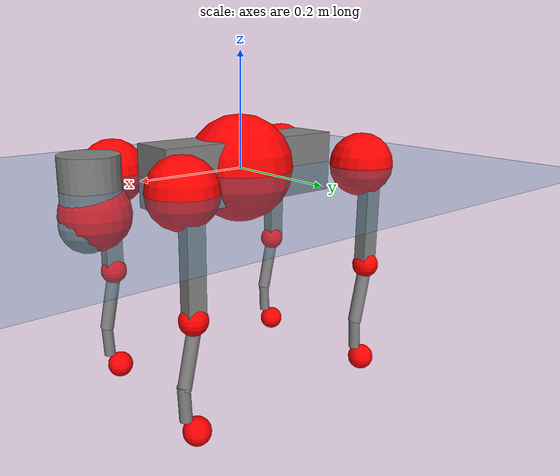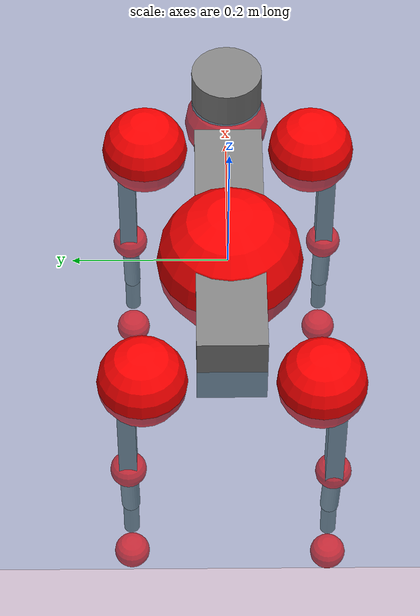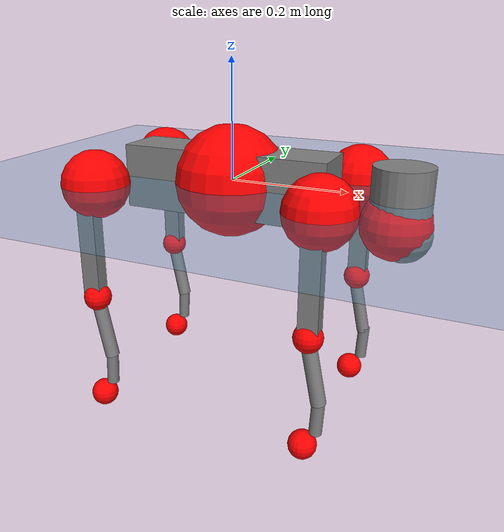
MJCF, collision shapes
<mujoco model="go2">
  <compiler angle="radian" assetdir="assets" balanceinertia="true" inertiafromgeom="false"/>

  <option timestep="0.005" density="1.2" viscosity="2e-05"/>

  <size nkey="1"/>

  <visual>
    <quality shadowsize="8192"/>
    <map shadowclip="0.5"/>
  </visual>

  <default>
    <default class="/">
      <geom contype="0" conaffinity="0" group="1" solref="-1000 -80"/>
      <site size="0.01 0.005 0.005" group="5"/>
      <general forcelimited="true" biastype="affine" gainprm="20" biasprm="0 -20 -0.5"/>
      <default class="go2">
        <joint armature="0.01" damping="0.01" frictionloss="0.2"/>
        <geom condim="1" margin="0.001"/>
        <default class="visual">
          <geom type="mesh" group="2"/>
        </default>
        <default class="collision">
          <geom group="3"/>
          <default class="foot">
            <geom size="0.022 0 0" condim="6" priority="1" friction="0.8 0.02 0.01" solimp="0.015 1 0.022"/>
          </default>
        </default>
        <default class="reward_collision_sphere">
          <geom group="5" rgba="1 0 0 1"/>
        </default>
      </default>
    </default>
  </default>

  <asset>
    <texture type="skybox" colorspace="auto" name="//unnamed_texture_0" builtin="gradient" rgb1="0.95 0.95 0.95" rgb2="0.95 0.95 0.95" width="100" height="600"/>
    <texture type="2d" colorspace="auto" name="texplane" builtin="checker" rgb1="0.345 0.575 0.748" rgb2="0.345 0.575 0.748" markrgb="1 1 1" width="512" height="512"/>
    <material name="MatPlane" class="/" texture="texplane" texuniform="true" texrepeat="2 2" specular="0.9"/>
    <material name="metal" class="/" rgba="0.9 0.95 0.95 1"/>
    <material name="black" class="/" rgba="0 0 0 1"/>
    <material name="white" class="/"/>
    <material name="gray" class="/" rgba="0.671705 0.692426 0.77427 1"/>
    <mesh name="base_0" class="/" file="base_0.obj"/>
    <mesh name="base_1" class="/" file="base_1.obj"/>
    <mesh name="base_2" class="/" file="base_2.obj"/>
    <mesh name="base_3" class="/" file="base_3.obj"/>
    <mesh name="base_4" class="/" file="base_4.obj"/>
    <mesh name="hip_0" class="/" file="hip_0.obj"/>
    <mesh name="hip_1" class="/" file="hip_1.obj"/>
    <mesh name="thigh_0" class="/" file="thigh_0.obj"/>
    <mesh name="thigh_1" class="/" file="thigh_1.obj"/>
    <mesh name="thigh_mirror_0" class="/" file="thigh_mirror_0.obj"/>
    <mesh name="thigh_mirror_1" class="/" file="thigh_mirror_1.obj"/>
    <mesh name="calf_0" class="/" file="calf_0.obj"/>
    <mesh name="calf_1" class="/" file="calf_1.obj"/>
    <mesh name="calf_mirror_0" class="/" file="calf_mirror_0.obj"/>
    <mesh name="calf_mirror_1" class="/" file="calf_mirror_1.obj"/>
    <mesh name="foot" class="/" file="foot.obj"/>
  </asset>

  <worldbody>
    <geom name="floor" class="/" size="100 100 0.125" type="plane" group="0" material="MatPlane"/>
    <light name="toplight_shadow" class="/" pos="0 0 5" dir="0.0990148 0.0990148 -0.990148" type="directional" ambient="0.04 0.04 0.04" diffuse="0.55 0.55 0.55" specular="0.12 0.12 0.12"/>
    <light name="toplight_fill" class="/" pos="0 0 5" dir="0.0990148 0.0990148 -0.990148" type="directional" castshadow="false" ambient="0.04 0.04 0.04" diffuse="0.3 0.3 0.3" specular="0.08 0.08 0.08"/>
    <body name="trunk" childclass="go2" pos="-0.000524241 -0.00264114 -0.000260968" quat="0.999999 -0.00103104 0.000195284 0.000812885">
      <inertial pos="0.018806 -0.00211665 -0.00216687" quat="-0.0017435 0.705954 -0.000239235 0.708256" mass="5.92031" diaginertia="0.0997417 0.0708225 0.0148514"/>
      <joint name="//unnamed_joint_0" type="free" armature="0" damping="0" frictionloss="0"/>
      <geom name="//unnamed_geom_1" class="visual" material="black" mesh="base_0"/>
      <geom name="//unnamed_geom_2" class="visual" material="black" mesh="base_1"/>
      <geom name="//unnamed_geom_3" class="visual" material="black" mesh="base_2"/>
      <geom name="//unnamed_geom_4" class="visual" material="white" mesh="base_3"/>
      <geom name="//unnamed_geom_5" class="visual" material="gray" mesh="base_4"/>
      <geom name="trunk_1" class="collision" size="0.178288 0.0443113 0.0540266" type="box"/>
      <geom name="trunk_2" class="collision" size="0.0473917 0.0426526" pos="0.284165 0 0.00904185" type="cylinder"/>
      <geom name="trunk_3" class="collision" size="0.0445482" pos="0.292141 0 -0.0542511"/>
      <geom name="//unnamed_geom_9" class="reward_collision_sphere" size="0.0947835"/>
      <geom name="//unnamed_geom_10" class="reward_collision_sphere" size="0.0568701" pos="0.279179 0 -0.0406883"/>
      <site name="imu" pos="-0.0207002 -0.00208379 0.0362641" size="0.00947835"/>
      <camera name="track" pos="0 -1.8845 0" quat="0.707107 0.707107 0 0" mode="trackcom"/>
      <camera name="ego_camera" pos="0.311086 0 0.0406883" quat="-0.5 -0.5 0.5 0.5"/>
      <body name="FL_hip" pos="0.192306 0.0446378 -0.000255898" quat="1 -0.000201882 0.000107048 -0.000120411">
        <inertial pos="-0.00570826 -0.000756639 -0.00086529" quat="0.491382 0.501129 0.503844 0.503543" mass="0.574365" diaginertia="0.000869241 0.000429825 0.000288208"/>
        <joint name="FL_hip_joint" pos="0 0 0" axis="0.999915 0.0109362 -0.00702797" stiffness="0.0126013" range="-1.09009 1.06824" armature="0.009519" damping="0" frictionloss="0.185026"/>
        <geom name="//unnamed_geom_11" class="visual" material="metal" mesh="hip_0"/>
        <geom name="//unnamed_geom_12" class="visual" material="gray" mesh="hip_1"/>
        <geom name="//unnamed_geom_13" class="collision" size="0.0436004 0.0189567" pos="0 0.0753799 0" quat="0.707107 0.707107 0 0" type="cylinder"/>
        <geom name="//unnamed_geom_14" class="reward_collision_sphere" size="0.0568701" pos="0 0.0659574 0"/>
        <body name="FL_thigh" pos="0.0019526 0.0917972 -0.000371988" quat="0.999999 0.000678734 0.000514925 -0.000624446">
          <inertial pos="-0.00378245 -0.0190489 -0.028408" quat="0.831133 0.0807781 -0.023014 0.549693" mass="1.01215" diaginertia="0.00570231 0.00448662 0.000533187"/>
          <joint name="FL_thigh_joint" pos="0 0 0" axis="-0.0150818 0.99987 -0.00577935" stiffness="0.0117592" range="-1.62306 3.44024" armature="0.0104197" damping="0" frictionloss="0.168652"/>
          <geom name="//unnamed_geom_15" class="visual" material="metal" mesh="thigh_0"/>
          <geom name="//unnamed_geom_16" class="visual" material="gray" mesh="thigh_1"/>
          <geom name="//unnamed_geom_17" class="collision" size="0.100944 0.011611 0.0161132" pos="0 0 -0.0962957" quat="0.707107 0 0.707107 0" type="box"/>
          <body name="FL_calf" pos="-0.00027841 -0.00182084 -0.191888" quat="1 2.94932e-05 -9.9287e-05 0.000244928">
            <inertial pos="0.0036359 -0.00294349 -0.130152" quat="0.710609 -0.00100162 -0.00184469 0.703584" mass="0.200497" diaginertia="0.00141981 0.00108568 3.14765e-05"/>
            <joint name="FL_calf_joint" pos="0 0 0" axis="-0.00931967 0.999928 -0.00754423" stiffness="0.0139268" range="-2.685 -0.781544" armature="0.00836946" damping="0" frictionloss="0.193941"/>
            <geom name="//unnamed_geom_18" class="visual" material="gray" mesh="calf_0"/>
            <geom name="//unnamed_geom_19" class="visual" material="black" mesh="calf_1"/>
            <geom name="FL_calf0" class="collision" size="0.011374 0.0568701" pos="0.00797656 0 -0.0542511" quat="0.994493 0 -0.104807 0" type="cylinder"/>
            <geom name="//unnamed_geom_21" class="collision" size="0.0104262 0.0308046" pos="0.0199414 0 -0.133819" quat="0.999688 0 0.0249974 0" type="cylinder"/>
            <geom name="//unnamed_geom_22" class="visual" pos="0 0 -0.192591" quat="1 0 0 0" material="black" mesh="foot"/>
            <geom name="FL_foot" class="foot" size="0.0162661" pos="-0.00199414 0 -0.192591"/>
            <geom name="//unnamed_geom_24" class="reward_collision_sphere" size="0.0236959"/>
            <geom name="//unnamed_geom_25" class="reward_collision_sphere" size="0.0236959" pos="-0.00199414 0 -0.192591"/>
            <site name="FL_foot" class="foot" pos="-0.00199414 0 -0.192591" size="0.00947835"/>
          </body>
        </body>
      </body>
      <body name="FR_hip" pos="0.190915 -0.0453157 -0.00154414" quat="1 0.000452291 0.000480135 -0.000119632">
        <inertial pos="-0.004141 -0.00083867 -0.000671824" quat="0.488001 0.504387 0.504106 0.503315" mass="0.573877" diaginertia="0.000846214 0.000442915 0.000294098"/>
        <joint name="FR_hip_joint" pos="0 0 0" axis="0.999935 -0.0108645 0.00345223" range="-1.07035 1.10542" armature="0.00874356" damping="0.00485027" frictionloss="0.189637"/>
        <geom name="//unnamed_geom_26" class="visual" pos="0 3.31597e-10 1.42229e-08" quat="4.63268e-05 1 0 0" material="metal" mesh="hip_0"/>
        <geom name="//unnamed_geom_27" class="visual" pos="0 5.37559e-10 -3.51787e-08" quat="4.63268e-05 1 0 0" material="gray" mesh="hip_1"/>
        <geom name="//unnamed_geom_28" class="collision" size="0.0436004 0.0189567" pos="0 -0.0753799 0" quat="0.707107 0.707107 0 0" type="cylinder"/>
        <geom name="//unnamed_geom_29" class="reward_collision_sphere" size="0.0568701" pos="0 -0.0659574 0"/>
        <body name="FR_thigh" pos="0.000260888 -0.089621 0.000989354" quat="1 4.36935e-05 -1.43525e-05 2.07994e-06">
          <inertial pos="-0.00146992 0.0186474 -0.0270929" quat="0.55279 -0.0201017 0.0879254 0.828425" mass="0.985774" diaginertia="0.00569262 0.00435127 0.000532681"/>
          <joint name="FR_thigh_joint" pos="0 0 0" axis="-0.00121834 -0.999999 0.000285503" stiffness="0.00774874" range="-3.49255 1.57792" armature="0.00833193" damping="0.0258618" frictionloss="0.166303"/>
          <geom name="//unnamed_geom_30" class="visual" material="metal" mesh="thigh_mirror_0"/>
          <geom name="//unnamed_geom_31" class="visual" material="gray" mesh="thigh_mirror_1"/>
          <geom name="//unnamed_geom_32" class="collision" size="0.100944 0.011611 0.0161132" pos="0 0 -0.0962957" quat="0.707107 0 0.707107 0" type="box"/>
          <body name="FR_calf" pos="-0.00162353 -6.38896e-05 -0.189079" quat="1 -0.000191772 -0.000215222 -0.000168638">
            <inertial pos="0.00381002 0.00330093 -0.127746" quat="0.698961 -0.00428562 0.00146649 0.715146" mass="0.211037" diaginertia="0.00148673 0.00115277 3.19383e-05"/>
            <joint name="FR_calf_joint" pos="0 0 0" axis="0.000434141 -0.999969 0.00788123" stiffness="0.00101136" range="0.840898 2.71911" armature="0.00996236" damping="0" frictionloss="0.18164"/>
            <geom name="//unnamed_geom_33" class="visual" material="gray" mesh="calf_mirror_0"/>
            <geom name="//unnamed_geom_34" class="visual" material="black" mesh="calf_mirror_1"/>
            <geom name="FR_calf0" class="collision" size="0.0123218 0.0568701" pos="0.0099707 0 -0.0542511" quat="0.995004 0 -0.0998334 0" type="cylinder"/>
            <geom name="//unnamed_geom_36" class="collision" size="0.0104262 0.0308046" pos="0.0199414 0 -0.133819" quat="0.999688 0 0.0249974 0" type="cylinder"/>
            <geom name="//unnamed_geom_37" class="visual" pos="0 0 -0.192591" quat="1 0 0 0" material="black" mesh="foot"/>
            <geom name="FR_foot" class="foot" size="0.0199718" pos="-0.00199414 0 -0.192591"/>
            <geom name="//unnamed_geom_39" class="reward_collision_sphere" size="0.0236959"/>
            <geom name="//unnamed_geom_40" class="reward_collision_sphere" size="0.0236959" pos="-0.00199414 0 -0.192591"/>
            <site name="FR_foot" class="foot" pos="-0.00199414 0 -0.192591" size="0.00947835"/>
          </body>
        </body>
      </body>
      <body name="RL_hip" pos="-0.192439 0.0455949 0.00137246" quat="1 -0.000290202 0.000195003 0.000169557">
        <inertial pos="0.00468488 0.0029542 0.0026463" quat="0.50753 0.498137 0.495723 0.498529" mass="0.556422" diaginertia="0.000868785 0.000426937 0.000294379"/>
        <joint name="RL_hip_joint" pos="0 0 0" axis="-0.999933 0.00704189 -0.00919117" stiffness="0.0117645" range="-0.993923 1.02633" armature="0.00979063" damping="0.0110687" frictionloss="0.216209"/>
        <geom name="//unnamed_geom_41" class="visual" pos="-8.09172e-10 0 -1.58616e-07" quat="4.63268e-05 0 1 0" material="metal" mesh="hip_0"/>
        <geom name="//unnamed_geom_42" class="visual" pos="-1.31177e-09 0 -1.4067e-07" quat="4.63268e-05 0 1 0" material="gray" mesh="hip_1"/>
        <geom name="//unnamed_geom_43" class="collision" size="0.0436004 0.0189567" pos="0 0.0753799 0" quat="0.707107 0.707107 0 0" type="cylinder"/>
        <geom name="//unnamed_geom_44" class="reward_collision_sphere" size="0.0568701" pos="0 0.0659574 0"/>
        <body name="RL_thigh" pos="-0.0003802 0.0878652 0.00251177" quat="0.999999 -5.22561e-05 0.00101491 -0.00079261">
          <inertial pos="-0.00328426 -0.0192712 -0.0286148" quat="0.833181 0.0904211 -0.00936291 0.545478" mass="0.954418" diaginertia="0.00570846 0.00446227 0.000549036"/>
          <joint name="RL_thigh_joint" pos="0 0 0" axis="0.00404318 0.99997 0.00663919" stiffness="0.00392698" range="-0.501056 4.53931" armature="0.0107193" damping="0.0238128" frictionloss="0.168792"/>
          <geom name="//unnamed_geom_45" class="visual" material="metal" mesh="thigh_0"/>
          <geom name="//unnamed_geom_46" class="visual" material="gray" mesh="thigh_1"/>
          <geom name="//unnamed_geom_47" class="collision" size="0.100944 0.011611 0.0161132" pos="0 0 -0.0962957" quat="0.707107 0 0.707107 0" type="box"/>
          <body name="RL_calf" pos="-0.00211509 6.32051e-05 -0.190326" quat="0.999999 0.000247215 0.00065531 -0.000871431">
            <inertial pos="0.00650772 0.00227448 -0.126839" quat="0.710731 0.000150048 -0.00205635 0.703461" mass="0.202396" diaginertia="0.00140007 0.00103606 3.05949e-05"/>
            <joint name="RL_calf_joint" pos="0 0 0" axis="-0.0109172 0.999923 0.00589467" stiffness="0.0110041" range="-2.67965 -0.824242" armature="0.0104096" damping="0.0125327" frictionloss="0.165502"/>
            <geom name="//unnamed_geom_48" class="visual" material="gray" mesh="calf_0"/>
            <geom name="//unnamed_geom_49" class="visual" material="black" mesh="calf_1"/>
            <geom name="RL_calf0" class="collision" size="0.0123218 0.0568701" pos="0.0099707 0 -0.0542511" quat="0.995004 0 -0.0998334 0" type="cylinder"/>
            <geom name="//unnamed_geom_51" class="collision" size="0.0104262 0.0308046" pos="0.0199414 0 -0.133819" quat="0.999688 0 0.0249974 0" type="cylinder"/>
            <geom name="//unnamed_geom_52" class="visual" pos="0 0 -0.192591" quat="1 0 0 0" material="black" mesh="foot"/>
            <geom name="RL_foot" class="foot" size="0.017648" pos="-0.00199414 0 -0.192591"/>
            <geom name="//unnamed_geom_54" class="reward_collision_sphere" size="0.0236959"/>
            <geom name="//unnamed_geom_55" class="reward_collision_sphere" size="0.0236959" pos="-0.00199414 0 -0.192591"/>
            <site name="RL_foot" class="foot" pos="-0.00199414 0 -0.192591" size="0.00947835"/>
          </body>
        </body>
      </body>
      <body name="RR_hip" pos="-0.195009 -0.0451627 -0.00147842" quat="1 -5.72978e-05 0.0005277 -0.000631002">
        <inertial pos="0.00475475 -0.00194076 0.000618181" quat="0.498108 0.496461 0.500517 0.504874" mass="0.565004" diaginertia="0.000852586 0.000433646 0.00028925"/>
        <joint name="RR_hip_joint" pos="0 0 0" axis="-0.999998 -0.00172788 0.00132574" stiffness="0.0107994" range="-1.02963 1.10023" armature="0.0107021" damping="0.00661454" frictionloss="0.212673"/>
        <geom name="//unnamed_geom_56" class="visual" pos="8.07274e-10 3.31597e-10 -1.72839e-07" quat="2.14617e-09 4.63268e-05 4.63268e-05 -1" material="metal" mesh="hip_0"/>
        <geom name="//unnamed_geom_57" class="visual" pos="1.31646e-09 5.37559e-10 -1.05492e-07" quat="2.14617e-09 4.63268e-05 4.63268e-05 -1" material="gray" mesh="hip_1"/>
        <geom name="//unnamed_geom_58" class="collision" size="0.0436004 0.0189567" pos="0 -0.0753799 0" quat="0.707107 0.707107 0 0" type="cylinder"/>
        <geom name="//unnamed_geom_59" class="reward_collision_sphere" size="0.0568701" pos="0 -0.0659574 0"/>
        <body name="RR_thigh" pos="-0.00232779 -0.0877645 -0.00284397" quat="1 -1.84673e-05 -0.000331076 -0.000206373">
          <inertial pos="-0.00356689 0.0183349 -0.029783" quat="0.55096 -0.0252282 0.08518 0.82979" mass="0.976474" diaginertia="0.00589773 0.00430583 0.000510404"/>
          <joint name="RR_thigh_joint" pos="0 0 0" axis="0.00203527 -0.999986 -0.00489265" stiffness="0.0114773" range="-4.54453 0.562408" armature="0.00843208" damping="0.025204" frictionloss="0.19567"/>
          <geom name="//unnamed_geom_60" class="visual" material="metal" mesh="thigh_mirror_0"/>
          <geom name="//unnamed_geom_61" class="visual" material="gray" mesh="thigh_mirror_1"/>
          <geom name="//unnamed_geom_62" class="collision" size="0.100944 0.011611 0.0161132" pos="0 0 -0.0962957" quat="0.707107 0 0.707107 0" type="box"/>
          <body name="RR_calf" pos="0.00354711 -2.48695e-05 -0.192978" quat="1 0.000469111 7.21381e-05 9.75277e-05">
            <inertial pos="0.00395768 -0.00047387 -0.127562" quat="0.704317 -0.00456607 0.000878961 0.709871" mass="0.211458" diaginertia="0.00146305 0.00110699 3.23582e-05"/>
            <joint name="RR_calf_joint" pos="0 0 0" axis="-0.00512361 -0.999959 -0.00744021" range="0.888954 2.7606" armature="0.0098521" damping="0.0159056" frictionloss="0.209904"/>
            <geom name="//unnamed_geom_63" class="visual" material="gray" mesh="calf_mirror_0"/>
            <geom name="//unnamed_geom_64" class="visual" material="black" mesh="calf_mirror_1"/>
            <geom name="RR_calf0" class="collision" size="0.0123218 0.0568701" pos="0.0099707 0 -0.0542511" quat="0.995004 0 -0.0998334 0" type="cylinder"/>
            <geom name="//unnamed_geom_66" class="collision" size="0.0104262 0.0308046" pos="0.0199414 0 -0.133819" quat="0.999688 0 0.0249974 0" type="cylinder"/>
            <geom name="//unnamed_geom_67" class="visual" pos="0 0 -0.192591" quat="1 0 0 0" material="black" mesh="foot"/>
            <geom name="RR_foot" class="foot" size="0.0227474" pos="-0.00199414 0 -0.192591"/>
            <geom name="//unnamed_geom_69" class="reward_collision_sphere" size="0.0236959"/>
            <geom name="//unnamed_geom_70" class="reward_collision_sphere" size="0.0236959" pos="-0.00199414 0 -0.192591"/>
            <site name="RR_foot" class="foot" pos="-0.00199414 0 -0.192591" size="0.00947835"/>
          </body>
        </body>
      </body>
    </body>
  </worldbody>

  <contact>
    <pair class="/" geom1="floor" geom2="FL_foot" name="//unnamed_contact_0"/>
    <pair class="/" geom1="floor" geom2="FR_foot" name="//unnamed_contact_1"/>
    <pair class="/" geom1="floor" geom2="RL_foot" name="//unnamed_contact_2"/>
    <pair class="/" geom1="floor" geom2="RR_foot" name="//unnamed_contact_3"/>
  </contact>

  <actuator>
    <general name="FL_hip" class="/" joint="FL_hip_joint" forcerange="-23.8225 23.8225" gainprm="18.8718" biasprm="0 -18.8718 -0.47074"/>
    <general name="FL_thigh" class="/" joint="FL_thigh_joint" forcerange="-22.1933 22.1933" gainprm="18.8718" biasprm="0 -18.8718 -0.47074"/>
    <general name="FL_calf" class="/" joint="FL_calf_joint" forcerange="-42.5196 42.5196" gainprm="18.8718" biasprm="0 -18.8718 -0.47074"/>
    <general name="FR_hip" class="/" joint="FR_hip_joint" forcerange="-20.8036 20.8036" gainprm="18.8718" biasprm="0 -18.8718 -0.47074"/>
    <general name="FR_thigh" class="/" joint="FR_thigh_joint" forcerange="-22.4159 22.4159" gainprm="18.8718" biasprm="0 -18.8718 -0.47074"/>
    <general name="FR_calf" class="/" joint="FR_calf_joint" forcerange="-38.2713 38.2713" gainprm="18.8718" biasprm="0 -18.8718 -0.47074"/>
    <general name="RL_hip" class="/" joint="RL_hip_joint" forcerange="-22.051 22.051" gainprm="18.8718" biasprm="0 -18.8718 -0.47074"/>
    <general name="RL_thigh" class="/" joint="RL_thigh_joint" forcerange="-22.1867 22.1867" gainprm="18.8718" biasprm="0 -18.8718 -0.47074"/>
    <general name="RL_calf" class="/" joint="RL_calf_joint" forcerange="-43.4448 43.4448" gainprm="18.8718" biasprm="0 -18.8718 -0.47074"/>
    <general name="RR_hip" class="/" joint="RR_hip_joint" forcerange="-20.9702 20.9702" gainprm="18.8718" biasprm="0 -18.8718 -0.47074"/>
    <general name="RR_thigh" class="/" joint="RR_thigh_joint" forcerange="-23.16 23.16" gainprm="18.8718" biasprm="0 -18.8718 -0.47074"/>
    <general name="RR_calf" class="/" joint="RR_calf_joint" forcerange="-47.2255 47.2255" gainprm="18.8718" biasprm="0 -18.8718 -0.47074"/>
  </actuator>

  <sensor>
    <gyro site="imu" name="imu_angular_velocity"/>
    <velocimeter site="imu" name="imu_linear_velocity"/>
    <framelinvel objtype="site" objname="FL_foot" name="FL_foot_global_linear_velocity"/>
    <framelinvel objtype="site" objname="FR_foot" name="FR_foot_global_linear_velocity"/>
    <framelinvel objtype="site" objname="RL_foot" name="RL_foot_global_linear_velocity"/>
    <framelinvel objtype="site" objname="RR_foot" name="RR_foot_global_linear_velocity"/>
  </sensor>

  <keyframe>
    <key name="home" qpos="0 0 0.325 1 0 0 0 0.1 0.8 -1.5 -0.1 -0.8 1.5 -0.1 0.8 -1.5 0.1 -0.8 1.5"/>
  </keyframe>
</mujoco>
